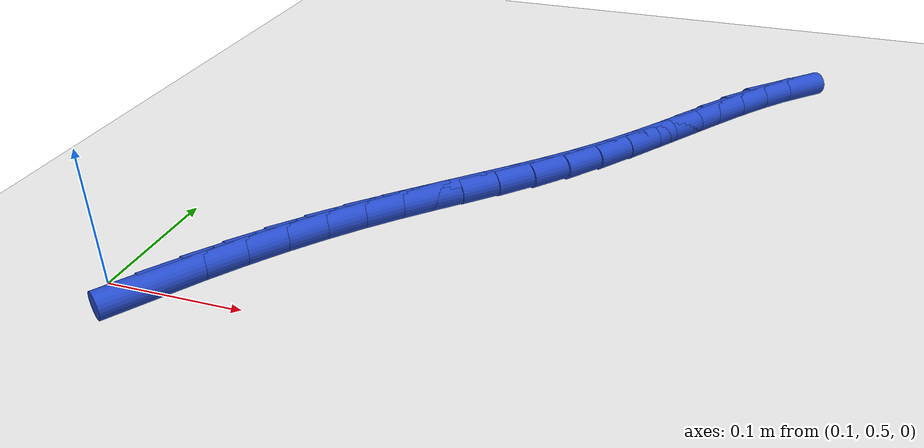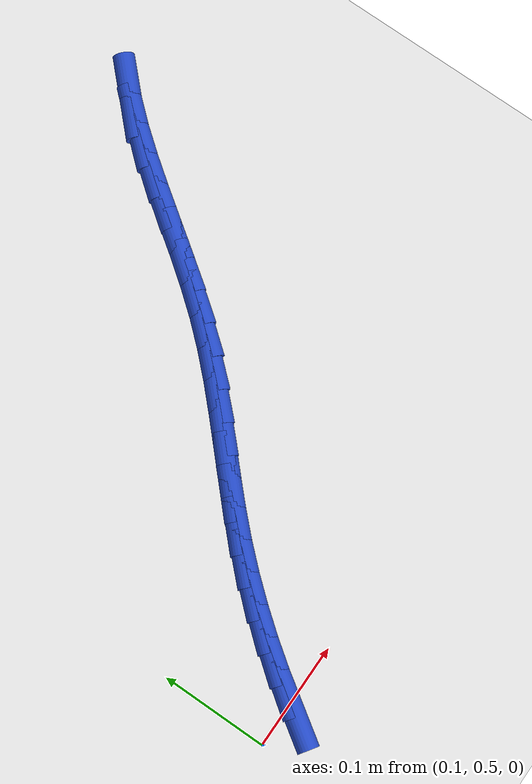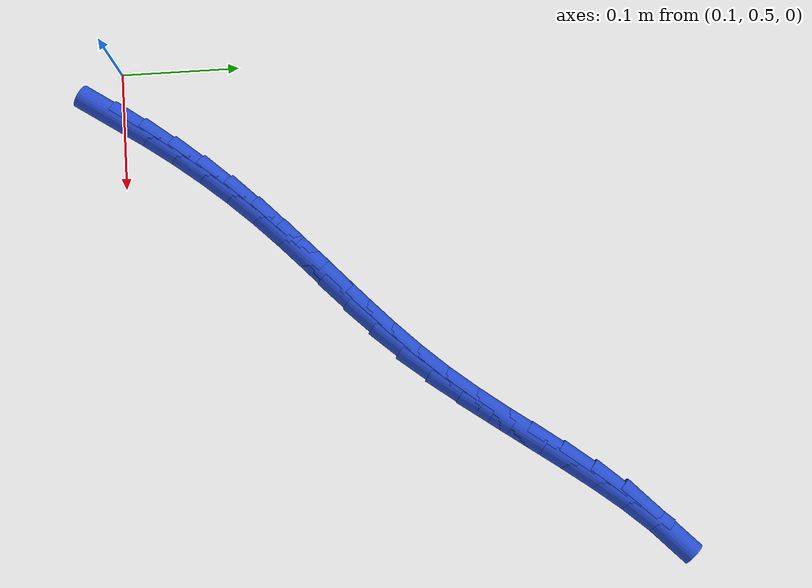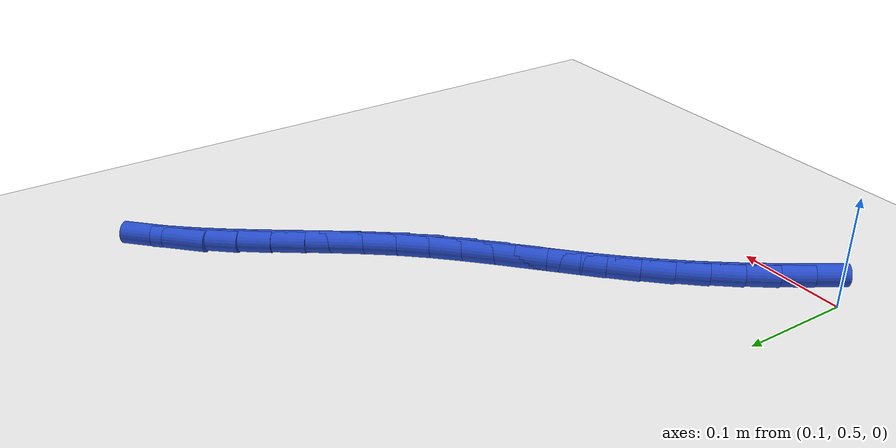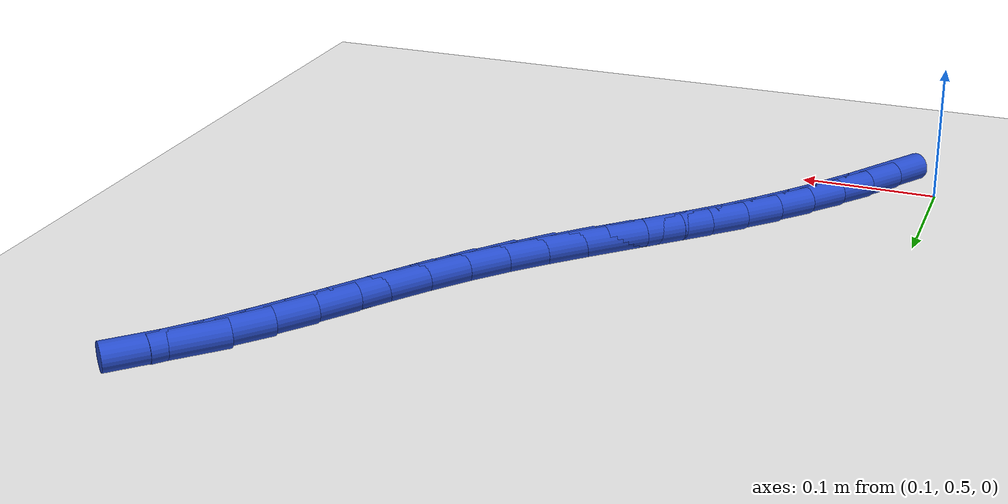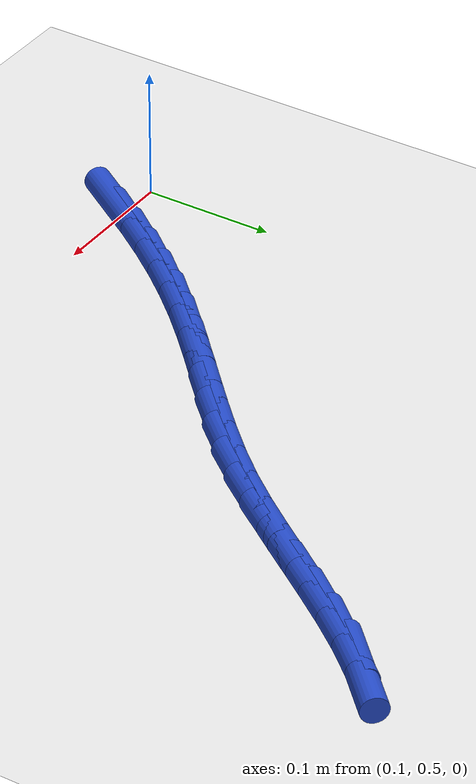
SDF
<sdf version="1.6">
 <world name="default">
  <model name="ground_plane">
   <static>1</static>
   <link name="link">
    <collision name="collision">
     <geometry><plane><normal>0 0 1</normal><size>100 100</size></plane></geometry>
     <surface><friction><ode><mu>100</mu><mu2>50</mu2></ode></friction></surface>
    </collision>
    <visual name="visual">
     <cast_shadows>0</cast_shadows>
     <geometry><plane><normal>0 0 1</normal><size>100 100</size></plane></geometry>
     <material>
      <script><uri>file://media/materials/scripts/gazebo.material</uri><name>Gazebo/WhiteGlow</name></script>
     </material>
    </visual>
   </link>
  </model>
  <model name="line">
   <link name="link_18">
    <pose>0.14122515293898044 0.4990223975574292 0.01 0 1.57 0.9803614112717358</pose>
    <collision name="collision">
     <geometry><cylinder><radius>0.01</radius><length>0.08</length></cylinder></geometry>
    </collision>
    <visual name="visual">
     <material>
      <script><name>Gazebo/Blue</name><uri>file://media/materials/scripts/gazebo.material</uri></script>
     </material>
     <geometry><cylinder><radius>0.01</radius><length>0.08</length></cylinder></geometry>
    </visual>
   </link>
   <link name="link_19">
    <pose>0.1575034858185894 0.5233116839567135 0.01 0 1.57 0.9441953635440624</pose>
    <collision name="collision">
     <geometry><cylinder><radius>0.01</radius><length>0.08</length></cylinder></geometry>
    </collision>
    <visual name="visual">
     <material>
      <script><name>Gazebo/Blue</name><uri>file://media/materials/scripts/gazebo.material</uri></script>
     </material>
     <geometry><cylinder><radius>0.01</radius><length>0.08</length></cylinder></geometry>
    </visual>
   </link>
   <link name="link_20">
    <pose>0.17459509880431726 0.5469214412906459 0.01 0 1.57 0.9071532820691521</pose>
    <collision name="collision">
     <geometry><cylinder><radius>0.01</radius><length>0.08</length></cylinder></geometry>
    </collision>
    <visual name="visual">
     <material>
      <script><name>Gazebo/Blue</name><uri>file://media/materials/scripts/gazebo.material</uri></script>
     </material>
     <geometry><cylinder><radius>0.01</radius><length>0.08</length></cylinder></geometry>
    </visual>
   </link>
   <link name="link_21">
    <pose>0.19248444028408013 0.5697990399556775 0.01 0 1.57 0.8691305028372828</pose>
    <collision name="collision">
     <geometry><cylinder><radius>0.01</radius><length>0.08</length></cylinder></geometry>
    </collision>
    <visual name="visual">
     <material>
      <script><name>Gazebo/Blue</name><uri>file://media/materials/scripts/gazebo.material</uri></script>
     </material>
     <geometry><cylinder><radius>0.01</radius><length>0.08</length></cylinder></geometry>
    </visual>
   </link>
   <link name="link_22">
    <pose>0.21115595864579434 0.5918918503482595 0.01 0 1.57 0.8300254553127776</pose>
    <collision name="collision">
     <geometry><cylinder><radius>0.01</radius><length>0.08</length></cylinder></geometry>
    </collision>
    <visual name="visual">
     <material>
      <script><name>Gazebo/Blue</name><uri>file://media/materials/scripts/gazebo.material</uri></script>
     </material>
     <geometry><cylinder><radius>0.01</radius><length>0.08</length></cylinder></geometry>
    </visual>
   </link>
   <link name="link_23">
    <pose>0.23059410227737615 0.6131472428648437 0.01 0 1.57 0.7911776008991813</pose>
    <collision name="collision">
     <geometry><cylinder><radius>0.01</radius><length>0.08</length></cylinder></geometry>
    </collision>
    <visual name="visual">
     <material>
      <script><name>Gazebo/Blue</name><uri>file://media/materials/scripts/gazebo.material</uri></script>
     </material>
     <geometry><cylinder><radius>0.01</radius><length>0.08</length></cylinder></geometry>
    </visual>
   </link>
   <link name="link_24">
    <pose>0.25076242883055533 0.6335500503623519 0.01 0 1.57 0.7627263812229939</pose>
    <collision name="collision">
     <geometry><cylinder><radius>0.01</radius><length>0.08</length></cylinder></geometry>
    </collision>
    <visual name="visual">
     <material>
      <script><name>Gazebo/Blue</name><uri>file://media/materials/scripts/gazebo.material</uri></script>
     </material>
     <geometry><cylinder><radius>0.01</radius><length>0.08</length></cylinder></geometry>
    </visual>
   </link>
   <link name="link_25">
    <pose>0.271478304459102 0.653347264635749 0.01 0 1.57 0.7492347336074365</pose>
    <collision name="collision">
     <geometry><cylinder><radius>0.01</radius><length>0.08</length></cylinder></geometry>
    </collision>
    <visual name="visual">
     <material>
      <script><name>Gazebo/Blue</name><uri>file://media/materials/scripts/gazebo.material</uri></script>
     </material>
     <geometry><cylinder><radius>0.01</radius><length>0.08</length></cylinder></geometry>
    </visual>
   </link>
   <link name="link_26">
    <pose>0.29249664988567936 0.6728978581911434 0.01 0 1.57 0.7507489183592908</pose>
    <collision name="collision">
     <geometry><cylinder><radius>0.01</radius><length>0.08</length></cylinder></geometry>
    </collision>
    <visual name="visual">
     <material>
      <script><name>Gazebo/Blue</name><uri>file://media/materials/scripts/gazebo.material</uri></script>
     </material>
     <geometry><cylinder><radius>0.01</radius><length>0.08</length></cylinder></geometry>
    </visual>
   </link>
   <link name="link_27">
    <pose>0.31357215153824736 0.6925612236852772 0.01 0 1.57 0.7670735073424142</pose>
    <collision name="collision">
     <geometry><cylinder><radius>0.01</radius><length>0.08</length></cylinder></geometry>
    </collision>
    <visual name="visual">
     <material>
      <script><name>Gazebo/Blue</name><uri>file://media/materials/scripts/gazebo.material</uri></script>
     </material>
     <geometry><cylinder><radius>0.01</radius><length>0.08</length></cylinder></geometry>
    </visual>
   </link>
   <link name="link_28">
    <pose>0.3344594958447658 0.7126967537748917 0.01 0 1.57 0.7977877285938565</pose>
    <collision name="collision">
     <geometry><cylinder><radius>0.01</radius><length>0.08</length></cylinder></geometry>
    </collision>
    <visual name="visual">
     <material>
      <script><name>Gazebo/Blue</name><uri>file://media/materials/scripts/gazebo.material</uri></script>
     </material>
     <geometry><cylinder><radius>0.01</radius><length>0.08</length></cylinder></geometry>
    </visual>
   </link>
   <link name="link_29">
    <pose>0.3549133692331948 0.733663841116729 0.01 0 1.57 0.8421633521934188</pose>
    <collision name="collision">
     <geometry><cylinder><radius>0.01</radius><length>0.08</length></cylinder></geometry>
    </collision>
    <visual name="visual">
     <material>
      <script><name>Gazebo/Blue</name><uri>file://media/materials/scripts/gazebo.material</uri></script>
     </material>
     <geometry><cylinder><radius>0.01</radius><length>0.08</length></cylinder></geometry>
    </visual>
   </link>
   <link name="link_30">
    <pose>0.3746884753688165 0.7558218483637996 0.01 0 1.57 0.8928625279495159</pose>
    <collision name="collision">
     <geometry><cylinder><radius>0.01</radius><length>0.08</length></cylinder></geometry>
    </collision>
    <visual name="visual">
     <material>
      <script><name>Gazebo/Blue</name><uri>file://media/materials/scripts/gazebo.material</uri></script>
     </material>
     <geometry><cylinder><radius>0.01</radius><length>0.08</length></cylinder></geometry>
    </visual>
   </link>
   <link name="link_31">
    <pose>0.39363947091818535 0.7793561573711487 0.01 0 1.57 0.9290617429577055</pose>
    <collision name="collision">
     <geometry><cylinder><radius>0.01</radius><length>0.08</length></cylinder></geometry>
    </collision>
    <visual name="visual">
     <material>
      <script><name>Gazebo/Blue</name><uri>file://media/materials/scripts/gazebo.material</uri></script>
     </material>
     <geometry><cylinder><radius>0.01</radius><length>0.08</length></cylinder></geometry>
    </visual>
   </link>
   <link name="link_32">
    <pose>0.41195625145768466 0.8038686244138229 0.01 0 1.57 0.9477217719095651</pose>
    <collision name="collision">
     <geometry><cylinder><radius>0.01</radius><length>0.08</length></cylinder></geometry>
    </collision>
    <visual name="visual">
     <material>
      <script><name>Gazebo/Blue</name><uri>file://media/materials/scripts/gazebo.material</uri></script>
     </material>
     <geometry><cylinder><radius>0.01</radius><length>0.08</length></cylinder></geometry>
    </visual>
   </link>
   <link name="link_33">
    <pose>0.4298989168282309 0.8288389063950776 0.01 0 1.57 0.9495533548428046</pose>
    <collision name="collision">
     <geometry><cylinder><radius>0.01</radius><length>0.08</length></cylinder></geometry>
    </collision>
    <visual name="visual">
     <material>
      <script><name>Gazebo/Blue</name><uri>file://media/materials/scripts/gazebo.material</uri></script>
     </material>
     <geometry><cylinder><radius>0.01</radius><length>0.08</length></cylinder></geometry>
    </visual>
   </link>
   <link name="link_34">
    <pose>0.44772756687074067 0.8537466602181686 0.01 0 1.57 0.9344084621459418</pose>
    <collision name="collision">
     <geometry><cylinder><radius>0.01</radius><length>0.08</length></cylinder></geometry>
    </collision>
    <visual name="visual">
     <material>
      <script><name>Gazebo/Blue</name><uri>file://media/materials/scripts/gazebo.material</uri></script>
     </material>
     <geometry><cylinder><radius>0.01</radius><length>0.08</length></cylinder></geometry>
    </visual>
   </link>
   <link name="link_35">
    <pose>0.4657023014261307 0.8780715427863516 0.01 0 1.57 0.9012342017211799</pose>
    <collision name="collision">
     <geometry><cylinder><radius>0.01</radius><length>0.08</length></cylinder></geometry>
    </collision>
    <visual name="visual">
     <material>
      <script><name>Gazebo/Blue</name><uri>file://media/materials/scripts/gazebo.material</uri></script>
     </material>
     <geometry><cylinder><radius>0.01</radius><length>0.08</length></cylinder></geometry>
    </visual>
   </link>
   <link name="link_36">
    <pose>0.4840832203353177 0.9012932110028824 0.01 0 1.57 0.8480761478310571</pose>
    <collision name="collision">
     <geometry><cylinder><radius>0.01</radius><length>0.08</length></cylinder></geometry>
    </collision>
    <visual name="visual">
     <material>
      <script><name>Gazebo/Blue</name><uri>file://media/materials/scripts/gazebo.material</uri></script>
     </material>
     <geometry><cylinder><radius>0.01</radius><length>0.08</length></cylinder></geometry>
    </visual>
   </link>
   <link name="link_37">
    <pose>0.5031304234392181 0.9228913217710164 0.01 0 1.57 0.7722260636885259</pose>
    <collision name="collision">
     <geometry><cylinder><radius>0.01</radius><length>0.08</length></cylinder></geometry>
    </collision>
    <visual name="visual">
     <material>
      <script><name>Gazebo/Blue</name><uri>file://media/materials/scripts/gazebo.material</uri></script>
     </material>
     <geometry><cylinder><radius>0.01</radius><length>0.08</length></cylinder></geometry>
    </visual>
   </link>
  </model>
 </world>
</sdf>
